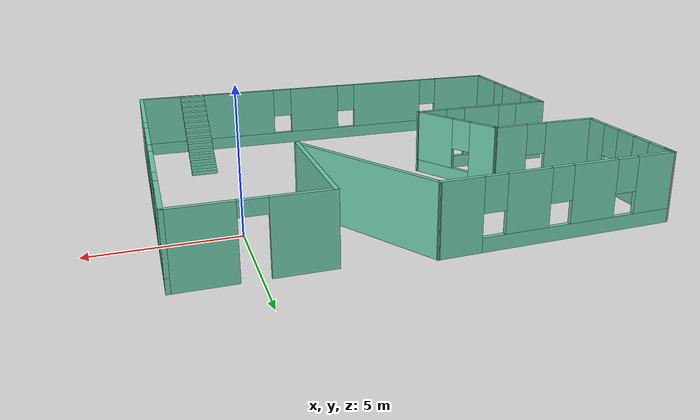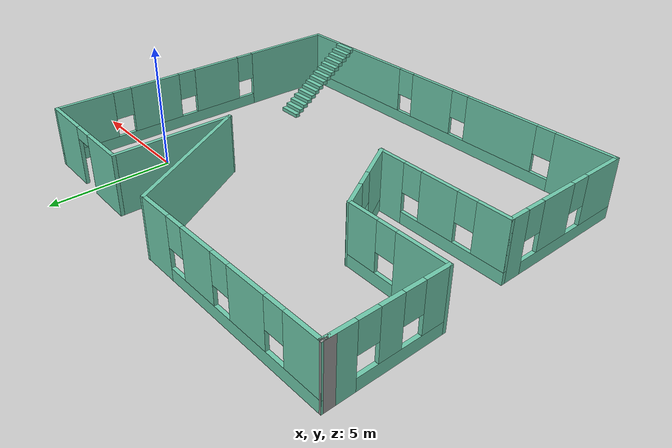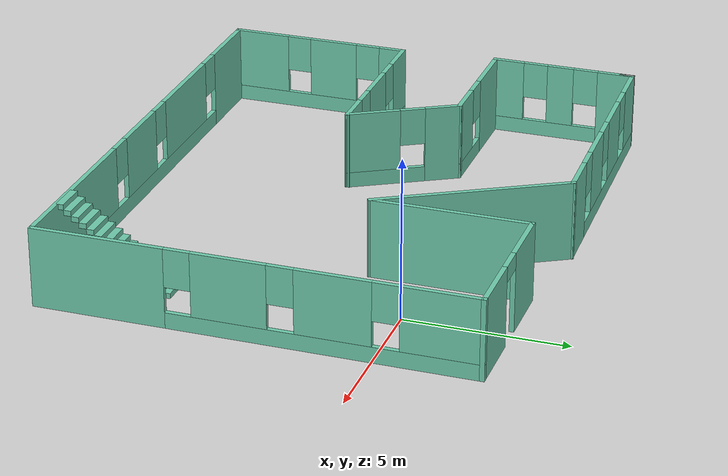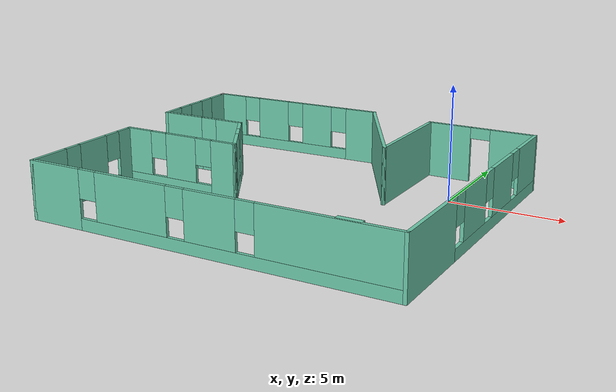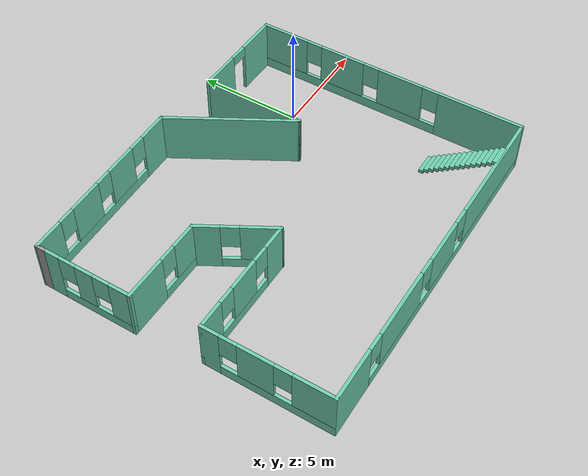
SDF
<?xml version='1.0'?>
<sdf version='1.7'>
  <model name='building'>
    <pose>-5.59578 -3.2778 0 0 -0 0</pose>
    <link name='Stairs_0'>
      <visual name='Stairs_0_Visual_0'>
        <pose>6.08378 -3.52115 0.083333 0 -0 0</pose>
        <geometry>
          <box>
            <size>1 0.233333 0.166667</size>
          </box>
        </geometry>
        <material>
          <script>
            <uri>file://media/materials/scripts/gazebo.material</uri>
            <name>Gazebo/Grey</name>
          </script>
          <ambient>0.435294 0.796078 0.67451 1</ambient>
        </material>
        <meta>
          <layer>0</layer>
        </meta>
      </visual>
      <collision name='Stairs_0_Collision_0'>
        <geometry>
          <box>
            <size>1 0.233333 0.166667</size>
          </box>
        </geometry>
        <pose>6.08378 -3.52115 0.083333 0 -0 0</pose>
      </collision>
      <visual name='Stairs_0_Visual_1'>
        <pose>6.08378 -3.75449 0.25 0 -0 0</pose>
        <geometry>
          <box>
            <size>1 0.233333 0.166667</size>
          </box>
        </geometry>
        <material>
          <script>
            <uri>file://media/materials/scripts/gazebo.material</uri>
            <name>Gazebo/Grey</name>
          </script>
          <ambient>0.435294 0.796078 0.67451 1</ambient>
        </material>
        <meta>
          <layer>0</layer>
        </meta>
      </visual>
      <collision name='Stairs_0_Collision_1'>
        <geometry>
          <box>
            <size>1 0.233333 0.166667</size>
          </box>
        </geometry>
        <pose>6.08378 -3.75449 0.25 0 -0 0</pose>
      </collision>
      <visual name='Stairs_0_Visual_2'>
        <pose>6.08378 -3.98782 0.416667 0 -0 0</pose>
        <geometry>
          <box>
            <size>1 0.233333 0.166667</size>
          </box>
        </geometry>
        <material>
          <script>
            <uri>file://media/materials/scripts/gazebo.material</uri>
            <name>Gazebo/Grey</name>
          </script>
          <ambient>0.435294 0.796078 0.67451 1</ambient>
        </material>
        <meta>
          <layer>0</layer>
        </meta>
      </visual>
      <collision name='Stairs_0_Collision_2'>
        <geometry>
          <box>
            <size>1 0.233333 0.166667</size>
          </box>
        </geometry>
        <pose>6.08378 -3.98782 0.416667 0 -0 0</pose>
      </collision>
      <visual name='Stairs_0_Visual_3'>
        <pose>6.08378 -4.22115 0.583333 0 -0 0</pose>
        <geometry>
          <box>
            <size>1 0.233333 0.166667</size>
          </box>
        </geometry>
        <material>
          <script>
            <uri>file://media/materials/scripts/gazebo.material</uri>
            <name>Gazebo/Grey</name>
          </script>
          <ambient>0.435294 0.796078 0.67451 1</ambient>
        </material>
        <meta>
          <layer>0</layer>
        </meta>
      </visual>
      <collision name='Stairs_0_Collision_3'>
        <geometry>
          <box>
            <size>1 0.233333 0.166667</size>
          </box>
        </geometry>
        <pose>6.08378 -4.22115 0.583333 0 -0 0</pose>
      </collision>
      <visual name='Stairs_0_Visual_4'>
        <pose>6.08378 -4.45449 0.75 0 -0 0</pose>
        <geometry>
          <box>
            <size>1 0.233333 0.166667</size>
          </box>
        </geometry>
        <material>
          <script>
            <uri>file://media/materials/scripts/gazebo.material</uri>
            <name>Gazebo/Grey</name>
          </script>
          <ambient>0.435294 0.796078 0.67451 1</ambient>
        </material>
        <meta>
          <layer>0</layer>
        </meta>
      </visual>
      <collision name='Stairs_0_Collision_4'>
        <geometry>
          <box>
            <size>1 0.233333 0.166667</size>
          </box>
        </geometry>
        <pose>6.08378 -4.45449 0.75 0 -0 0</pose>
      </collision>
      <visual name='Stairs_0_Visual_5'>
        <pose>6.08378 -4.68782 0.916667 0 -0 0</pose>
        <geometry>
          <box>
            <size>1 0.233333 0.166667</size>
          </box>
        </geometry>
        <material>
          <script>
            <uri>file://media/materials/scripts/gazebo.material</uri>
            <name>Gazebo/Grey</name>
          </script>
          <ambient>0.435294 0.796078 0.67451 1</ambient>
        </material>
        <meta>
          <layer>0</layer>
        </meta>
      </visual>
      <collision name='Stairs_0_Collision_5'>
        <geometry>
          <box>
            <size>1 0.233333 0.166667</size>
          </box>
        </geometry>
        <pose>6.08378 -4.68782 0.916667 0 -0 0</pose>
      </collision>
      <visual name='Stairs_0_Visual_6'>
        <pose>6.08378 -4.92115 1.08333 0 -0 0</pose>
        <geometry>
          <box>
            <size>1 0.233333 0.166667</size>
          </box>
        </geometry>
        <material>
          <script>
            <uri>file://media/materials/scripts/gazebo.material</uri>
            <name>Gazebo/Grey</name>
          </script>
          <ambient>0.435294 0.796078 0.67451 1</ambient>
        </material>
        <meta>
          <layer>0</layer>
        </meta>
      </visual>
      <collision name='Stairs_0_Collision_6'>
        <geometry>
          <box>
            <size>1 0.233333 0.166667</size>
          </box>
        </geometry>
        <pose>6.08378 -4.92115 1.08333 0 -0 0</pose>
      </collision>
      <visual name='Stairs_0_Visual_7'>
        <pose>6.08378 -5.15449 1.25 0 -0 0</pose>
        <geometry>
          <box>
            <size>1 0.233333 0.166667</size>
          </box>
        </geometry>
        <material>
          <script>
            <uri>file://media/materials/scripts/gazebo.material</uri>
            <name>Gazebo/Grey</name>
          </script>
          <ambient>0.435294 0.796078 0.67451 1</ambient>
        </material>
        <meta>
          <layer>0</layer>
        </meta>
      </visual>
      <collision name='Stairs_0_Collision_7'>
        <geometry>
          <box>
            <size>1 0.233333 0.166667</size>
          </box>
        </geometry>
        <pose>6.08378 -5.15449 1.25 0 -0 0</pose>
      </collision>
      <visual name='Stairs_0_Visual_8'>
        <pose>6.08378 -5.38782 1.41667 0 -0 0</pose>
        <geometry>
          <box>
            <size>1 0.233333 0.166667</size>
          </box>
        </geometry>
        <material>
          <script>
            <uri>file://media/materials/scripts/gazebo.material</uri>
            <name>Gazebo/Grey</name>
          </script>
          <ambient>0.435294 0.796078 0.67451 1</ambient>
        </material>
        <meta>
          <layer>0</layer>
        </meta>
      </visual>
      <collision name='Stairs_0_Collision_8'>
        <geometry>
          <box>
            <size>1 0.233333 0.166667</size>
          </box>
        </geometry>
        <pose>6.08378 -5.38782 1.41667 0 -0 0</pose>
      </collision>
      <visual name='Stairs_0_Visual_9'>
        <pose>6.08378 -5.62115 1.58333 0 -0 0</pose>
        <geometry>
          <box>
            <size>1 0.233333 0.166667</size>
          </box>
        </geometry>
        <material>
          <script>
            <uri>file://media/materials/scripts/gazebo.material</uri>
            <name>Gazebo/Grey</name>
          </script>
          <ambient>0.435294 0.796078 0.67451 1</ambient>
        </material>
        <meta>
          <layer>0</layer>
        </meta>
      </visual>
      <collision name='Stairs_0_Collision_9'>
        <geometry>
          <box>
            <size>1 0.233333 0.166667</size>
          </box>
        </geometry>
        <pose>6.08378 -5.62115 1.58333 0 -0 0</pose>
      </collision>
      <visual name='Stairs_0_Visual_10'>
        <pose>6.08378 -5.85449 1.75 0 -0 0</pose>
        <geometry>
          <box>
            <size>1 0.233333 0.166667</size>
          </box>
        </geometry>
        <material>
          <script>
            <uri>file://media/materials/scripts/gazebo.material</uri>
            <name>Gazebo/Grey</name>
          </script>
          <ambient>0.435294 0.796078 0.67451 1</ambient>
        </material>
        <meta>
          <layer>0</layer>
        </meta>
      </visual>
      <collision name='Stairs_0_Collision_10'>
        <geometry>
          <box>
            <size>1 0.233333 0.166667</size>
          </box>
        </geometry>
        <pose>6.08378 -5.85449 1.75 0 -0 0</pose>
      </collision>
      <visual name='Stairs_0_Visual_11'>
        <pose>6.08378 -6.08782 1.91667 0 -0 0</pose>
        <geometry>
          <box>
            <size>1 0.233333 0.166667</size>
          </box>
        </geometry>
        <material>
          <script>
            <uri>file://media/materials/scripts/gazebo.material</uri>
            <name>Gazebo/Grey</name>
          </script>
          <ambient>0.435294 0.796078 0.67451 1</ambient>
        </material>
        <meta>
          <layer>0</layer>
        </meta>
      </visual>
      <collision name='Stairs_0_Collision_11'>
        <geometry>
          <box>
            <size>1 0.233333 0.166667</size>
          </box>
        </geometry>
        <pose>6.08378 -6.08782 1.91667 0 -0 0</pose>
      </collision>
      <visual name='Stairs_0_Visual_12'>
        <pose>6.08378 -6.32115 2.08333 0 -0 0</pose>
        <geometry>
          <box>
            <size>1 0.233333 0.166667</size>
          </box>
        </geometry>
        <material>
          <script>
            <uri>file://media/materials/scripts/gazebo.material</uri>
            <name>Gazebo/Grey</name>
          </script>
          <ambient>0.435294 0.796078 0.67451 1</ambient>
        </material>
        <meta>
          <layer>0</layer>
        </meta>
      </visual>
      <collision name='Stairs_0_Collision_12'>
        <geometry>
          <box>
            <size>1 0.233333 0.166667</size>
          </box>
        </geometry>
        <pose>6.08378 -6.32115 2.08333 0 -0 0</pose>
      </collision>
      <visual name='Stairs_0_Visual_13'>
        <pose>6.08378 -6.55449 2.25 0 -0 0</pose>
        <geometry>
          <box>
            <size>1 0.233333 0.166667</size>
          </box>
        </geometry>
        <material>
          <script>
            <uri>file://media/materials/scripts/gazebo.material</uri>
            <name>Gazebo/Grey</name>
          </script>
          <ambient>0.435294 0.796078 0.67451 1</ambient>
        </material>
        <meta>
          <layer>0</layer>
        </meta>
      </visual>
      <collision name='Stairs_0_Collision_13'>
        <geometry>
          <box>
            <size>1 0.233333 0.166667</size>
          </box>
        </geometry>
        <pose>6.08378 -6.55449 2.25 0 -0 0</pose>
      </collision>
      <visual name='Stairs_0_Visual_14'>
        <pose>6.08378 -6.78782 2.41667 0 -0 0</pose>
        <geometry>
          <box>
            <size>1 0.233333 0.166667</size>
          </box>
        </geometry>
        <material>
          <script>
            <uri>file://media/materials/scripts/gazebo.material</uri>
            <name>Gazebo/Grey</name>
          </script>
          <ambient>0.435294 0.796078 0.67451 1</ambient>
        </material>
        <meta>
          <layer>0</layer>
        </meta>
      </visual>
      <collision name='Stairs_0_Collision_14'>
        <geometry>
          <box>
            <size>1 0.233333 0.166667</size>
          </box>
        </geometry>
        <pose>6.08378 -6.78782 2.41667 0 -0 0</pose>
      </collision>
    </link>
    <link name='Wall_21'>
      <pose>-8.19906 4.36259 0 0 -0 -1.5708</pose>
      <visual name='Wall_21_Visual_0'>
        <pose>-1.76985 0 1.25 0 -0 0</pose>
        <geometry>
          <box>
            <size>1.21029 0.15 2.5</size>
          </box>
        </geometry>
        <material>
          <script>
            <uri>file://media/materials/scripts/gazebo.material</uri>
            <name>Gazebo/Grey</name>
          </script>
          <ambient>0.435294 0.796078 0.67451 1</ambient>
        </material>
        <meta>
          <layer>0</layer>
        </meta>
      </visual>
      <collision name='Wall_21_Collision_0'>
        <geometry>
          <box>
            <size>1.21029 0.15 2.5</size>
          </box>
        </geometry>
        <pose>-1.76985 0 1.25 0 -0 0</pose>
      </collision>
      <visual name='Wall_21_Visual_1'>
        <pose>0.605145 0 0.25 0 -0 0</pose>
        <geometry>
          <box>
            <size>3.53971 0.15 0.5</size>
          </box>
        </geometry>
        <material>
          <script>
            <uri>file://media/materials/scripts/gazebo.material</uri>
            <name>Gazebo/Grey</name>
          </script>
          <ambient>0.435294 0.796078 0.67451 1</ambient>
        </material>
        <meta>
          <layer>0</layer>
        </meta>
      </visual>
      <collision name='Wall_21_Collision_1'>
        <geometry>
          <box>
            <size>3.53971 0.15 0.5</size>
          </box>
        </geometry>
        <pose>0.605145 0 0.25 0 -0 0</pose>
      </collision>
      <visual name='Wall_21_Visual_2'>
        <pose>0.07272 0 1.5 0 -0 0</pose>
        <geometry>
          <box>
            <size>0.874861 0.15 2</size>
          </box>
        </geometry>
        <material>
          <script>
            <uri>file://media/materials/scripts/gazebo.material</uri>
            <name>Gazebo/Grey</name>
          </script>
          <ambient>0.435294 0.796078 0.67451 1</ambient>
        </material>
        <meta>
          <layer>0</layer>
        </meta>
      </visual>
      <collision name='Wall_21_Collision_2'>
        <geometry>
          <box>
            <size>0.874861 0.15 2</size>
          </box>
        </geometry>
        <pose>0.07272 0 1.5 0 -0 0</pose>
      </collision>
      <visual name='Wall_21_Visual_3'>
        <pose>1.84258 0 1.5 0 -0 0</pose>
        <geometry>
          <box>
            <size>1.06485 0.15 2</size>
          </box>
        </geometry>
        <material>
          <script>
            <uri>file://media/materials/scripts/gazebo.material</uri>
            <name>Gazebo/Grey</name>
          </script>
          <ambient>0.435294 0.796078 0.67451 1</ambient>
        </material>
        <meta>
          <layer>0</layer>
        </meta>
      </visual>
      <collision name='Wall_21_Collision_3'>
        <geometry>
          <box>
            <size>1.06485 0.15 2</size>
          </box>
        </geometry>
        <pose>1.84258 0 1.5 0 -0 0</pose>
      </collision>
      <visual name='Wall_21_Visual_4'>
        <pose>-0.764711 0 1.9 0 -0 0</pose>
        <geometry>
          <box>
            <size>0.8 0.15 1.2</size>
          </box>
        </geometry>
        <material>
          <script>
            <uri>file://media/materials/scripts/gazebo.material</uri>
            <name>Gazebo/Grey</name>
          </script>
          <ambient>0.435294 0.796078 0.67451 1</ambient>
        </material>
        <meta>
          <layer>0</layer>
        </meta>
      </visual>
      <collision name='Wall_21_Collision_4'>
        <geometry>
          <box>
            <size>0.8 0.15 1.2</size>
          </box>
        </geometry>
        <pose>-0.764711 0 1.9 0 -0 0</pose>
      </collision>
      <visual name='Wall_21_Visual_5'>
        <pose>0.91015 0 1.9 0 -0 0</pose>
        <geometry>
          <box>
            <size>0.8 0.15 1.2</size>
          </box>
        </geometry>
        <material>
          <script>
            <uri>file://media/materials/scripts/gazebo.material</uri>
            <name>Gazebo/Grey</name>
          </script>
          <ambient>0.435294 0.796078 0.67451 1</ambient>
        </material>
        <meta>
          <layer>0</layer>
        </meta>
      </visual>
      <collision name='Wall_21_Collision_5'>
        <geometry>
          <box>
            <size>0.8 0.15 1.2</size>
          </box>
        </geometry>
        <pose>0.91015 0 1.9 0 -0 0</pose>
      </collision>
    </link>
    <link name='Wall_22'>
      <pose>-6.14907 2.06259 0 0 -0 0</pose>
      <visual name='Wall_22_Visual_0'>
        <pose>-1.07788 0 1.25 0 -0 0</pose>
        <geometry>
          <box>
            <size>2.09424 0.15 2.5</size>
          </box>
        </geometry>
        <material>
          <script>
            <uri>file://media/materials/scripts/gazebo.material</uri>
            <name>Gazebo/Grey</name>
          </script>
          <ambient>0.435294 0.796078 0.67451 1</ambient>
        </material>
        <meta>
          <layer>0</layer>
        </meta>
      </visual>
      <collision name='Wall_22_Collision_0'>
        <geometry>
          <box>
            <size>2.09424 0.15 2.5</size>
          </box>
        </geometry>
        <pose>-1.07788 0 1.25 0 -0 0</pose>
      </collision>
      <visual name='Wall_22_Visual_1'>
        <pose>1.04712 0 0.25 0 -0 0</pose>
        <geometry>
          <box>
            <size>2.15576 0.15 0.5</size>
          </box>
        </geometry>
        <material>
          <script>
            <uri>file://media/materials/scripts/gazebo.material</uri>
            <name>Gazebo/Grey</name>
          </script>
          <ambient>0.435294 0.796078 0.67451 1</ambient>
        </material>
        <meta>
          <layer>0</layer>
        </meta>
      </visual>
      <collision name='Wall_22_Collision_1'>
        <geometry>
          <box>
            <size>2.15576 0.15 0.5</size>
          </box>
        </geometry>
        <pose>1.04712 0 0.25 0 -0 0</pose>
      </collision>
      <visual name='Wall_22_Visual_2'>
        <pose>1.44712 0 1.5 0 -0 0</pose>
        <geometry>
          <box>
            <size>1.35576 0.15 2</size>
          </box>
        </geometry>
        <material>
          <script>
            <uri>file://media/materials/scripts/gazebo.material</uri>
            <name>Gazebo/Grey</name>
          </script>
          <ambient>0.435294 0.796078 0.67451 1</ambient>
        </material>
        <meta>
          <layer>0</layer>
        </meta>
      </visual>
      <collision name='Wall_22_Collision_2'>
        <geometry>
          <box>
            <size>1.35576 0.15 2</size>
          </box>
        </geometry>
        <pose>1.44712 0 1.5 0 -0 0</pose>
      </collision>
      <visual name='Wall_22_Visual_3'>
        <pose>0.369244 0 1.9 0 -0 0</pose>
        <geometry>
          <box>
            <size>0.8 0.15 1.2</size>
          </box>
        </geometry>
        <material>
          <script>
            <uri>file://media/materials/scripts/gazebo.material</uri>
            <name>Gazebo/Grey</name>
          </script>
          <ambient>0.435294 0.796078 0.67451 1</ambient>
        </material>
        <meta>
          <layer>0</layer>
        </meta>
      </visual>
      <collision name='Wall_22_Collision_3'>
        <geometry>
          <box>
            <size>0.8 0.15 1.2</size>
          </box>
        </geometry>
        <pose>0.369244 0 1.9 0 -0 0</pose>
      </collision>
    </link>
    <link name='Wall_23'>
      <pose>-3.19906 0.503743 0 0 -0 -1.0472</pose>
      <visual name='Wall_23_Visual_0'>
        <pose>-1.27463 0 1.25 0 -0 0</pose>
        <geometry>
          <box>
            <size>1.20073 0.15 2.5</size>
          </box>
        </geometry>
        <material>
          <script>
            <uri>file://media/materials/scripts/gazebo.material</uri>
            <name>Gazebo/Grey</name>
          </script>
          <ambient>0.435294 0.796078 0.67451 1</ambient>
        </material>
        <meta>
          <layer>0</layer>
        </meta>
      </visual>
      <collision name='Wall_23_Collision_0'>
        <geometry>
          <box>
            <size>1.20073 0.15 2.5</size>
          </box>
        </geometry>
        <pose>-1.27463 0 1.25 0 -0 0</pose>
      </collision>
      <visual name='Wall_23_Visual_1'>
        <pose>0.600366 0 0.25 0 -0 0</pose>
        <geometry>
          <box>
            <size>2.54927 0.15 0.5</size>
          </box>
        </geometry>
        <material>
          <script>
            <uri>file://media/materials/scripts/gazebo.material</uri>
            <name>Gazebo/Grey</name>
          </script>
          <ambient>0.435294 0.796078 0.67451 1</ambient>
        </material>
        <meta>
          <layer>0</layer>
        </meta>
      </visual>
      <collision name='Wall_23_Collision_1'>
        <geometry>
          <box>
            <size>2.54927 0.15 0.5</size>
          </box>
        </geometry>
        <pose>0.600366 0 0.25 0 -0 0</pose>
      </collision>
      <visual name='Wall_23_Visual_2'>
        <pose>1.00037 0 1.5 0 -0 0</pose>
        <geometry>
          <box>
            <size>1.74927 0.15 2</size>
          </box>
        </geometry>
        <material>
          <script>
            <uri>file://media/materials/scripts/gazebo.material</uri>
            <name>Gazebo/Grey</name>
          </script>
          <ambient>0.435294 0.796078 0.67451 1</ambient>
        </material>
        <meta>
          <layer>0</layer>
        </meta>
      </visual>
      <collision name='Wall_23_Collision_2'>
        <geometry>
          <box>
            <size>1.74927 0.15 2</size>
          </box>
        </geometry>
        <pose>1.00037 0 1.5 0 -0 0</pose>
      </collision>
      <visual name='Wall_23_Visual_3'>
        <pose>-0.274268 0 1.9 0 -0 0</pose>
        <geometry>
          <box>
            <size>0.8 0.15 1.2</size>
          </box>
        </geometry>
        <material>
          <script>
            <uri>file://media/materials/scripts/gazebo.material</uri>
            <name>Gazebo/Grey</name>
          </script>
          <ambient>0.435294 0.796078 0.67451 1</ambient>
        </material>
        <meta>
          <layer>0</layer>
        </meta>
      </visual>
      <collision name='Wall_23_Collision_3'>
        <geometry>
          <box>
            <size>0.8 0.15 1.2</size>
          </box>
        </geometry>
        <pose>-0.274268 0 1.9 0 -0 0</pose>
      </collision>
    </link>
    <link name='Wall_24'>
      <pose>-5.09906 -1.0551 0 0 -0 3.14159</pose>
      <visual name='Wall_24_Visual_0'>
        <pose>-2.25086 0 1.25 0 -0 0</pose>
        <geometry>
          <box>
            <size>1.24828 0.15 2.5</size>
          </box>
        </geometry>
        <material>
          <script>
            <uri>file://media/materials/scripts/gazebo.material</uri>
            <name>Gazebo/Grey</name>
          </script>
          <ambient>0.435294 0.796078 0.67451 1</ambient>
        </material>
        <meta>
          <layer>0</layer>
        </meta>
      </visual>
      <collision name='Wall_24_Collision_0'>
        <geometry>
          <box>
            <size>1.24828 0.15 2.5</size>
          </box>
        </geometry>
        <pose>-2.25086 0 1.25 0 -0 0</pose>
      </collision>
      <visual name='Wall_24_Visual_1'>
        <pose>0.624138 0 0.25 0 -0 0</pose>
        <geometry>
          <box>
            <size>4.50173 0.15 0.5</size>
          </box>
        </geometry>
        <material>
          <script>
            <uri>file://media/materials/scripts/gazebo.material</uri>
            <name>Gazebo/Grey</name>
          </script>
          <ambient>0.435294 0.796078 0.67451 1</ambient>
        </material>
        <meta>
          <layer>0</layer>
        </meta>
      </visual>
      <collision name='Wall_24_Collision_1'>
        <geometry>
          <box>
            <size>4.50173 0.15 0.5</size>
          </box>
        </geometry>
        <pose>0.624138 0 0.25 0 -0 0</pose>
      </collision>
      <visual name='Wall_24_Visual_2'>
        <pose>-0.040365 0 1.5 0 -0 0</pose>
        <geometry>
          <box>
            <size>1.57272 0.15 2</size>
          </box>
        </geometry>
        <material>
          <script>
            <uri>file://media/materials/scripts/gazebo.material</uri>
            <name>Gazebo/Grey</name>
          </script>
          <ambient>0.435294 0.796078 0.67451 1</ambient>
        </material>
        <meta>
          <layer>0</layer>
        </meta>
      </visual>
      <collision name='Wall_24_Collision_2'>
        <geometry>
          <box>
            <size>1.57272 0.15 2</size>
          </box>
        </geometry>
        <pose>-0.040365 0 1.5 0 -0 0</pose>
      </collision>
      <visual name='Wall_24_Visual_3'>
        <pose>2.2105 0 1.5 0 -0 0</pose>
        <geometry>
          <box>
            <size>1.329 0.15 2</size>
          </box>
        </geometry>
        <material>
          <script>
            <uri>file://media/materials/scripts/gazebo.material</uri>
            <name>Gazebo/Grey</name>
          </script>
          <ambient>0.435294 0.796078 0.67451 1</ambient>
        </material>
        <meta>
          <layer>0</layer>
        </meta>
      </visual>
      <collision name='Wall_24_Collision_3'>
        <geometry>
          <box>
            <size>1.329 0.15 2</size>
          </box>
        </geometry>
        <pose>2.2105 0 1.5 0 -0 0</pose>
      </collision>
      <visual name='Wall_24_Visual_4'>
        <pose>-1.22673 0 1.9 0 -0 0</pose>
        <geometry>
          <box>
            <size>0.8 0.15 1.2</size>
          </box>
        </geometry>
        <material>
          <script>
            <uri>file://media/materials/scripts/gazebo.material</uri>
            <name>Gazebo/Grey</name>
          </script>
          <ambient>0.435294 0.796078 0.67451 1</ambient>
        </material>
        <meta>
          <layer>0</layer>
        </meta>
      </visual>
      <collision name='Wall_24_Collision_4'>
        <geometry>
          <box>
            <size>0.8 0.15 1.2</size>
          </box>
        </geometry>
        <pose>-1.22673 0 1.9 0 -0 0</pose>
      </collision>
      <visual name='Wall_24_Visual_5'>
        <pose>1.146 0 1.9 0 -0 0</pose>
        <geometry>
          <box>
            <size>0.8 0.15 1.2</size>
          </box>
        </geometry>
        <material>
          <script>
            <uri>file://media/materials/scripts/gazebo.material</uri>
            <name>Gazebo/Grey</name>
          </script>
          <ambient>0.435294 0.796078 0.67451 1</ambient>
        </material>
        <meta>
          <layer>0</layer>
        </meta>
      </visual>
      <collision name='Wall_24_Collision_5'>
        <geometry>
          <box>
            <size>0.8 0.15 1.2</size>
          </box>
        </geometry>
        <pose>1.146 0 1.9 0 -0 0</pose>
      </collision>
    </link>
    <link name='Wall_25'>
      <pose>-7.89907 -3.9801 0 0 -0 -1.5708</pose>
      <visual name='Wall_25_Visual_0'>
        <pose>-2.55505 0 1.25 0 -0 0</pose>
        <geometry>
          <box>
            <size>0.8899 0.15 2.5</size>
          </box>
        </geometry>
        <material>
          <script>
            <uri>file://media/materials/scripts/gazebo.material</uri>
            <name>Gazebo/Grey</name>
          </script>
          <ambient>0.435294 0.796078 0.67451 1</ambient>
        </material>
        <meta>
          <layer>0</layer>
        </meta>
      </visual>
      <collision name='Wall_25_Collision_0'>
        <geometry>
          <box>
            <size>0.8899 0.15 2.5</size>
          </box>
        </geometry>
        <pose>-2.55505 0 1.25 0 -0 0</pose>
      </collision>
      <visual name='Wall_25_Visual_1'>
        <pose>0.44495 0 0.25 0 -0 0</pose>
        <geometry>
          <box>
            <size>5.1101 0.15 0.5</size>
          </box>
        </geometry>
        <material>
          <script>
            <uri>file://media/materials/scripts/gazebo.material</uri>
            <name>Gazebo/Grey</name>
          </script>
          <ambient>0.435294 0.796078 0.67451 1</ambient>
        </material>
        <meta>
          <layer>0</layer>
        </meta>
      </visual>
      <collision name='Wall_25_Collision_1'>
        <geometry>
          <box>
            <size>5.1101 0.15 0.5</size>
          </box>
        </geometry>
        <pose>0.44495 0 0.25 0 -0 0</pose>
      </collision>
      <visual name='Wall_25_Visual_2'>
        <pose>-0.500479 0 1.5 0 -0 0</pose>
        <geometry>
          <box>
            <size>1.61924 0.15 2</size>
          </box>
        </geometry>
        <material>
          <script>
            <uri>file://media/materials/scripts/gazebo.material</uri>
            <name>Gazebo/Grey</name>
          </script>
          <ambient>0.435294 0.796078 0.67451 1</ambient>
        </material>
        <meta>
          <layer>0</layer>
        </meta>
      </visual>
      <collision name='Wall_25_Collision_2'>
        <geometry>
          <box>
            <size>1.61924 0.15 2</size>
          </box>
        </geometry>
        <pose>-0.500479 0 1.5 0 -0 0</pose>
      </collision>
      <visual name='Wall_25_Visual_3'>
        <pose>2.05457 0 1.5 0 -0 0</pose>
        <geometry>
          <box>
            <size>1.89086 0.15 2</size>
          </box>
        </geometry>
        <material>
          <script>
            <uri>file://media/materials/scripts/gazebo.material</uri>
            <name>Gazebo/Grey</name>
          </script>
          <ambient>0.435294 0.796078 0.67451 1</ambient>
        </material>
        <meta>
          <layer>0</layer>
        </meta>
      </visual>
      <collision name='Wall_25_Collision_3'>
        <geometry>
          <box>
            <size>1.89086 0.15 2</size>
          </box>
        </geometry>
        <pose>2.05457 0 1.5 0 -0 0</pose>
      </collision>
      <visual name='Wall_25_Visual_4'>
        <pose>-1.7101 0 1.9 0 -0 0</pose>
        <geometry>
          <box>
            <size>0.8 0.15 1.2</size>
          </box>
        </geometry>
        <material>
          <script>
            <uri>file://media/materials/scripts/gazebo.material</uri>
            <name>Gazebo/Grey</name>
          </script>
          <ambient>0.435294 0.796078 0.67451 1</ambient>
        </material>
        <meta>
          <layer>0</layer>
        </meta>
      </visual>
      <collision name='Wall_25_Collision_4'>
        <geometry>
          <box>
            <size>0.8 0.15 1.2</size>
          </box>
        </geometry>
        <pose>-1.7101 0 1.9 0 -0 0</pose>
      </collision>
      <visual name='Wall_25_Visual_5'>
        <pose>0.709143 0 1.9 0 -0 0</pose>
        <geometry>
          <box>
            <size>0.8 0.15 1.2</size>
          </box>
        </geometry>
        <material>
          <script>
            <uri>file://media/materials/scripts/gazebo.material</uri>
            <name>Gazebo/Grey</name>
          </script>
          <ambient>0.435294 0.796078 0.67451 1</ambient>
        </material>
        <meta>
          <layer>0</layer>
        </meta>
      </visual>
      <collision name='Wall_25_Collision_5'>
        <geometry>
          <box>
            <size>0.8 0.15 1.2</size>
          </box>
        </geometry>
        <pose>0.709143 0 1.9 0 -0 0</pose>
      </collision>
    </link>
    <link name='Wall_26'>
      <pose>0.150936 -6.9051 0 0 -0 0</pose>
      <visual name='Wall_26_Visual_0'>
        <pose>-6.87895 0 1.25 0 -0 0</pose>
        <geometry>
          <box>
            <size>2.4921 0.15 2.5</size>
          </box>
        </geometry>
        <material>
          <script>
            <uri>file://media/materials/scripts/gazebo.material</uri>
            <name>Gazebo/Grey</name>
          </script>
          <ambient>0.435294 0.796078 0.67451 1</ambient>
        </material>
        <meta>
          <layer>0</layer>
        </meta>
      </visual>
      <collision name='Wall_26_Collision_0'>
        <geometry>
          <box>
            <size>2.4921 0.15 2.5</size>
          </box>
        </geometry>
        <pose>-6.87895 0 1.25 0 -0 0</pose>
      </collision>
      <visual name='Wall_26_Visual_1'>
        <pose>1.24605 0 0.25 0 -0 0</pose>
        <geometry>
          <box>
            <size>13.7579 0.15 0.5</size>
          </box>
        </geometry>
        <material>
          <script>
            <uri>file://media/materials/scripts/gazebo.material</uri>
            <name>Gazebo/Grey</name>
          </script>
          <ambient>0.435294 0.796078 0.67451 1</ambient>
        </material>
        <meta>
          <layer>0</layer>
        </meta>
      </visual>
      <collision name='Wall_26_Collision_1'>
        <geometry>
          <box>
            <size>13.7579 0.15 0.5</size>
          </box>
        </geometry>
        <pose>1.24605 0 0.25 0 -0 0</pose>
      </collision>
      <visual name='Wall_26_Visual_2'>
        <pose>-3.16258 0 1.5 0 -0 0</pose>
        <geometry>
          <box>
            <size>3.34063 0.15 2</size>
          </box>
        </geometry>
        <material>
          <script>
            <uri>file://media/materials/scripts/gazebo.material</uri>
            <name>Gazebo/Grey</name>
          </script>
          <ambient>0.435294 0.796078 0.67451 1</ambient>
        </material>
        <meta>
          <layer>0</layer>
        </meta>
      </visual>
      <collision name='Wall_26_Collision_2'>
        <geometry>
          <box>
            <size>3.34063 0.15 2</size>
          </box>
        </geometry>
        <pose>-3.16258 0 1.5 0 -0 0</pose>
      </collision>
      <visual name='Wall_26_Visual_3'>
        <pose>0.419758 0 1.5 0 -0 0</pose>
        <geometry>
          <box>
            <size>2.22405 0.15 2</size>
          </box>
        </geometry>
        <material>
          <script>
            <uri>file://media/materials/scripts/gazebo.material</uri>
            <name>Gazebo/Grey</name>
          </script>
          <ambient>0.435294 0.796078 0.67451 1</ambient>
        </material>
        <meta>
          <layer>0</layer>
        </meta>
      </visual>
      <collision name='Wall_26_Collision_3'>
        <geometry>
          <box>
            <size>2.22405 0.15 2</size>
          </box>
        </geometry>
        <pose>0.419758 0 1.5 0 -0 0</pose>
      </collision>
      <visual name='Wall_26_Visual_4'>
        <pose>5.22839 0 1.5 0 -0 0</pose>
        <geometry>
          <box>
            <size>5.79322 0.15 2</size>
          </box>
        </geometry>
        <material>
          <script>
            <uri>file://media/materials/scripts/gazebo.material</uri>
            <name>Gazebo/Grey</name>
          </script>
          <ambient>0.435294 0.796078 0.67451 1</ambient>
        </material>
        <meta>
          <layer>0</layer>
        </meta>
      </visual>
      <collision name='Wall_26_Collision_4'>
        <geometry>
          <box>
            <size>5.79322 0.15 2</size>
          </box>
        </geometry>
        <pose>5.22839 0 1.5 0 -0 0</pose>
      </collision>
      <visual name='Wall_26_Visual_5'>
        <pose>-5.2329 0 1.9 0 -0 0</pose>
        <geometry>
          <box>
            <size>0.8 0.15 1.2</size>
          </box>
        </geometry>
        <material>
          <script>
            <uri>file://media/materials/scripts/gazebo.material</uri>
            <name>Gazebo/Grey</name>
          </script>
          <ambient>0.435294 0.796078 0.67451 1</ambient>
        </material>
        <meta>
          <layer>0</layer>
        </meta>
      </visual>
      <collision name='Wall_26_Collision_5'>
        <geometry>
          <box>
            <size>0.8 0.15 1.2</size>
          </box>
        </geometry>
        <pose>-5.2329 0 1.9 0 -0 0</pose>
      </collision>
      <visual name='Wall_26_Visual_6'>
        <pose>-1.09227 0 1.9 0 -0 0</pose>
        <geometry>
          <box>
            <size>0.8 0.15 1.2</size>
          </box>
        </geometry>
        <material>
          <script>
            <uri>file://media/materials/scripts/gazebo.material</uri>
            <name>Gazebo/Grey</name>
          </script>
          <ambient>0.435294 0.796078 0.67451 1</ambient>
        </material>
        <meta>
          <layer>0</layer>
        </meta>
      </visual>
      <collision name='Wall_26_Collision_6'>
        <geometry>
          <box>
            <size>0.8 0.15 1.2</size>
          </box>
        </geometry>
        <pose>-1.09227 0 1.9 0 -0 0</pose>
      </collision>
      <visual name='Wall_26_Visual_7'>
        <pose>1.93179 0 1.9 0 -0 0</pose>
        <geometry>
          <box>
            <size>0.8 0.15 1.2</size>
          </box>
        </geometry>
        <material>
          <script>
            <uri>file://media/materials/scripts/gazebo.material</uri>
            <name>Gazebo/Grey</name>
          </script>
          <ambient>0.435294 0.796078 0.67451 1</ambient>
        </material>
        <meta>
          <layer>0</layer>
        </meta>
      </visual>
      <collision name='Wall_26_Collision_7'>
        <geometry>
          <box>
            <size>0.8 0.15 1.2</size>
          </box>
        </geometry>
        <pose>1.93179 0 1.9 0 -0 0</pose>
      </collision>
    </link>
    <link name='Wall_27'>
      <pose>8.20094 -0.230103 0 0 -0 1.5708</pose>
      <visual name='Wall_27_Visual_0'>
        <pose>-4.688 0 1.25 0 -0 0</pose>
        <geometry>
          <box>
            <size>4.124 0.15 2.5</size>
          </box>
        </geometry>
        <material>
          <script>
            <uri>file://media/materials/scripts/gazebo.material</uri>
            <name>Gazebo/Grey</name>
          </script>
          <ambient>0.435294 0.796078 0.67451 1</ambient>
        </material>
        <meta>
          <layer>0</layer>
        </meta>
      </visual>
      <collision name='Wall_27_Collision_0'>
        <geometry>
          <box>
            <size>4.124 0.15 2.5</size>
          </box>
        </geometry>
        <pose>-4.688 0 1.25 0 -0 0</pose>
      </collision>
      <visual name='Wall_27_Visual_1'>
        <pose>2.062 0 0.25 0 -0 0</pose>
        <geometry>
          <box>
            <size>9.376 0.15 0.5</size>
          </box>
        </geometry>
        <material>
          <script>
            <uri>file://media/materials/scripts/gazebo.material</uri>
            <name>Gazebo/Grey</name>
          </script>
          <ambient>0.435294 0.796078 0.67451 1</ambient>
        </material>
        <meta>
          <layer>0</layer>
        </meta>
      </visual>
      <collision name='Wall_27_Collision_1'>
        <geometry>
          <box>
            <size>9.376 0.15 0.5</size>
          </box>
        </geometry>
        <pose>2.062 0 0.25 0 -0 0</pose>
      </collision>
      <visual name='Wall_27_Visual_2'>
        <pose>-0.690707 0 1.5 0 -0 0</pose>
        <geometry>
          <box>
            <size>2.27058 0.15 2</size>
          </box>
        </geometry>
        <material>
          <script>
            <uri>file://media/materials/scripts/gazebo.material</uri>
            <name>Gazebo/Grey</name>
          </script>
          <ambient>0.435294 0.796078 0.67451 1</ambient>
        </material>
        <meta>
          <layer>0</layer>
        </meta>
      </visual>
      <collision name='Wall_27_Collision_2'>
        <geometry>
          <box>
            <size>2.27058 0.15 2</size>
          </box>
        </geometry>
        <pose>-0.690707 0 1.5 0 -0 0</pose>
      </collision>
      <visual name='Wall_27_Visual_3'>
        <pose>2.37987 0 1.5 0 -0 0</pose>
        <geometry>
          <box>
            <size>2.27058 0.15 2</size>
          </box>
        </geometry>
        <material>
          <script>
            <uri>file://media/materials/scripts/gazebo.material</uri>
            <name>Gazebo/Grey</name>
          </script>
          <ambient>0.435294 0.796078 0.67451 1</ambient>
        </material>
        <meta>
          <layer>0</layer>
        </meta>
      </visual>
      <collision name='Wall_27_Collision_3'>
        <geometry>
          <box>
            <size>2.27058 0.15 2</size>
          </box>
        </geometry>
        <pose>2.37987 0 1.5 0 -0 0</pose>
      </collision>
      <visual name='Wall_27_Visual_4'>
        <pose>5.53258 0 1.5 0 -0 0</pose>
        <geometry>
          <box>
            <size>2.43484 0.15 2</size>
          </box>
        </geometry>
        <material>
          <script>
            <uri>file://media/materials/scripts/gazebo.material</uri>
            <name>Gazebo/Grey</name>
          </script>
          <ambient>0.435294 0.796078 0.67451 1</ambient>
        </material>
        <meta>
          <layer>0</layer>
        </meta>
      </visual>
      <collision name='Wall_27_Collision_4'>
        <geometry>
          <box>
            <size>2.43484 0.15 2</size>
          </box>
        </geometry>
        <pose>5.53258 0 1.5 0 -0 0</pose>
      </collision>
      <visual name='Wall_27_Visual_5'>
        <pose>-2.226 0 1.9 0 -0 0</pose>
        <geometry>
          <box>
            <size>0.8 0.15 1.2</size>
          </box>
        </geometry>
        <material>
          <script>
            <uri>file://media/materials/scripts/gazebo.material</uri>
            <name>Gazebo/Grey</name>
          </script>
          <ambient>0.435294 0.796078 0.67451 1</ambient>
        </material>
        <meta>
          <layer>0</layer>
        </meta>
      </visual>
      <collision name='Wall_27_Collision_5'>
        <geometry>
          <box>
            <size>0.8 0.15 1.2</size>
          </box>
        </geometry>
        <pose>-2.226 0 1.9 0 -0 0</pose>
      </collision>
      <visual name='Wall_27_Visual_6'>
        <pose>0.844583 0 1.9 0 -0 0</pose>
        <geometry>
          <box>
            <size>0.8 0.15 1.2</size>
          </box>
        </geometry>
        <material>
          <script>
            <uri>file://media/materials/scripts/gazebo.material</uri>
            <name>Gazebo/Grey</name>
          </script>
          <ambient>0.435294 0.796078 0.67451 1</ambient>
        </material>
        <meta>
          <layer>0</layer>
        </meta>
      </visual>
      <collision name='Wall_27_Collision_6'>
        <geometry>
          <box>
            <size>0.8 0.15 1.2</size>
          </box>
        </geometry>
        <pose>0.844583 0 1.9 0 -0 0</pose>
      </collision>
      <visual name='Wall_27_Visual_7'>
        <pose>3.91516 0 1.9 0 -0 0</pose>
        <geometry>
          <box>
            <size>0.8 0.15 1.2</size>
          </box>
        </geometry>
        <material>
          <script>
            <uri>file://media/materials/scripts/gazebo.material</uri>
            <name>Gazebo/Grey</name>
          </script>
          <ambient>0.435294 0.796078 0.67451 1</ambient>
        </material>
        <meta>
          <layer>0</layer>
        </meta>
      </visual>
      <collision name='Wall_27_Collision_7'>
        <geometry>
          <box>
            <size>0.8 0.15 1.2</size>
          </box>
        </geometry>
        <pose>3.91516 0 1.9 0 -0 0</pose>
      </collision>
    </link>
    <link name='Wall_28'>
      <pose>5.77594 6.4449 0 0 -0 3.14159</pose>
      <visual name='Wall_28_Visual_0'>
        <pose>-1.46609 0 1.25 0 -0 0</pose>
        <geometry>
          <box>
            <size>2.06783 0.15 2.5</size>
          </box>
        </geometry>
        <material>
          <script>
            <uri>file://media/materials/scripts/gazebo.material</uri>
            <name>Gazebo/Grey</name>
          </script>
          <ambient>0.435294 0.796078 0.67451 1</ambient>
        </material>
        <meta>
          <layer>0</layer>
        </meta>
      </visual>
      <collision name='Wall_28_Collision_0'>
        <geometry>
          <box>
            <size>2.06783 0.15 2.5</size>
          </box>
        </geometry>
        <pose>-1.46609 0 1.25 0 -0 0</pose>
      </collision>
      <visual name='Wall_28_Visual_1'>
        <pose>1.48391 0 1.25 0 -0 0</pose>
        <geometry>
          <box>
            <size>2.03217 0.15 2.5</size>
          </box>
        </geometry>
        <material>
          <script>
            <uri>file://media/materials/scripts/gazebo.material</uri>
            <name>Gazebo/Grey</name>
          </script>
          <ambient>0.435294 0.796078 0.67451 1</ambient>
        </material>
        <meta>
          <layer>0</layer>
        </meta>
      </visual>
      <collision name='Wall_28_Collision_1'>
        <geometry>
          <box>
            <size>2.03217 0.15 2.5</size>
          </box>
        </geometry>
        <pose>1.48391 0 1.25 0 -0 0</pose>
      </collision>
      <visual name='Wall_28_Visual_2'>
        <pose>0.017826 0 2.25 0 -0 0</pose>
        <geometry>
          <box>
            <size>0.9 0.15 0.5</size>
          </box>
        </geometry>
        <material>
          <script>
            <uri>file://media/materials/scripts/gazebo.material</uri>
            <name>Gazebo/Grey</name>
          </script>
          <ambient>0.435294 0.796078 0.67451 1</ambient>
        </material>
        <meta>
          <layer>0</layer>
        </meta>
      </visual>
      <collision name='Wall_28_Collision_2'>
        <geometry>
          <box>
            <size>0.9 0.15 0.5</size>
          </box>
        </geometry>
        <pose>0.017826 0 2.25 0 -0 0</pose>
      </collision>
    </link>
    <link name='Wall_29'>
      <collision name='Wall_29_Collision'>
        <geometry>
          <box>
            <size>5 0.15 2.5</size>
          </box>
        </geometry>
        <pose>0 0 1.25 0 -0 0</pose>
      </collision>
      <visual name='Wall_29_Visual'>
        <pose>0 0 1.25 0 -0 0</pose>
        <geometry>
          <box>
            <size>5 0.15 2.5</size>
          </box>
        </geometry>
        <material>
          <script>
            <uri>file://media/materials/scripts/gazebo.material</uri>
            <name>Gazebo/Grey</name>
          </script>
          <ambient>0.435294 0.796078 0.67451 1</ambient>
        </material>
        <meta>
          <layer>0</layer>
        </meta>
      </visual>
      <pose>3.35094 4.0199 0 0 -0 -1.5708</pose>
    </link>
    <link name='Wall_30'>
      <collision name='Wall_30_Collision'>
        <geometry>
          <box>
            <size>6.25 0.15 2.5</size>
          </box>
        </geometry>
        <pose>0 0 1.25 0 -0 0</pose>
      </collision>
      <visual name='Wall_30_Visual'>
        <pose>0 0 1.25 0 -0 0</pose>
        <geometry>
          <box>
            <size>6.25 0.15 2.5</size>
          </box>
        </geometry>
        <material>
          <script>
            <uri>file://media/materials/scripts/gazebo.material</uri>
            <name>Gazebo/Grey</name>
          </script>
          <ambient>0.435294 0.796078 0.67451 1</ambient>
        </material>
        <meta>
          <layer>0</layer>
        </meta>
      </visual>
      <pose>1.82594 4.23627 0 0 -0 2.0944</pose>
    </link>
    <link name='Wall_31'>
      <pose>-3.94906 6.77012 0 0 -0 -3.1163</pose>
      <visual name='Wall_31_Visual_0'>
        <pose>-3.56525 0 1.25 0 -0 0</pose>
        <geometry>
          <box>
            <size>1.52222 0.15 2.5</size>
          </box>
        </geometry>
        <material>
          <script>
            <uri>file://media/materials/scripts/gazebo.material</uri>
            <name>Gazebo/Grey</name>
          </script>
          <ambient>0.435294 0.796078 0.67451 1</ambient>
        </material>
        <meta>
          <layer>0</layer>
        </meta>
      </visual>
      <collision name='Wall_31_Collision_0'>
        <geometry>
          <box>
            <size>1.52222 0.15 2.5</size>
          </box>
        </geometry>
        <pose>-3.56525 0 1.25 0 -0 0</pose>
      </collision>
      <visual name='Wall_31_Visual_1'>
        <pose>0.761111 0 0.25 0 -0 0</pose>
        <geometry>
          <box>
            <size>7.1305 0.15 0.5</size>
          </box>
        </geometry>
        <material>
          <script>
            <uri>file://media/materials/scripts/gazebo.material</uri>
            <name>Gazebo/Grey</name>
          </script>
          <ambient>0.435294 0.796078 0.67451 1</ambient>
        </material>
        <meta>
          <layer>0</layer>
        </meta>
      </visual>
      <collision name='Wall_31_Collision_1'>
        <geometry>
          <box>
            <size>7.1305 0.15 0.5</size>
          </box>
        </geometry>
        <pose>0.761111 0 0.25 0 -0 0</pose>
      </collision>
      <visual name='Wall_31_Visual_2'>
        <pose>-1.21698 0 1.5 0 -0 0</pose>
        <geometry>
          <box>
            <size>1.57431 0.15 2</size>
          </box>
        </geometry>
        <material>
          <script>
            <uri>file://media/materials/scripts/gazebo.material</uri>
            <name>Gazebo/Grey</name>
          </script>
          <ambient>0.435294 0.796078 0.67451 1</ambient>
        </material>
        <meta>
          <layer>0</layer>
        </meta>
      </visual>
      <collision name='Wall_31_Collision_2'>
        <geometry>
          <box>
            <size>1.57431 0.15 2</size>
          </box>
        </geometry>
        <pose>-1.21698 0 1.5 0 -0 0</pose>
      </collision>
      <visual name='Wall_31_Visual_3'>
        <pose>1.20208 0 1.5 0 -0 0</pose>
        <geometry>
          <box>
            <size>1.6638 0.15 2</size>
          </box>
        </geometry>
        <material>
          <script>
            <uri>file://media/materials/scripts/gazebo.material</uri>
            <name>Gazebo/Grey</name>
          </script>
          <ambient>0.435294 0.796078 0.67451 1</ambient>
        </material>
        <meta>
          <layer>0</layer>
        </meta>
      </visual>
      <collision name='Wall_31_Collision_3'>
        <geometry>
          <box>
            <size>1.6638 0.15 2</size>
          </box>
        </geometry>
        <pose>1.20208 0 1.5 0 -0 0</pose>
      </collision>
      <visual name='Wall_31_Visual_4'>
        <pose>3.58017 0 1.5 0 -0 0</pose>
        <geometry>
          <box>
            <size>1.49238 0.15 2</size>
          </box>
        </geometry>
        <material>
          <script>
            <uri>file://media/materials/scripts/gazebo.material</uri>
            <name>Gazebo/Grey</name>
          </script>
          <ambient>0.435294 0.796078 0.67451 1</ambient>
        </material>
        <meta>
          <layer>0</layer>
        </meta>
      </visual>
      <collision name='Wall_31_Collision_4'>
        <geometry>
          <box>
            <size>1.49238 0.15 2</size>
          </box>
        </geometry>
        <pose>3.58017 0 1.5 0 -0 0</pose>
      </collision>
      <visual name='Wall_31_Visual_5'>
        <pose>-2.40414 0 1.9 0 -0 0</pose>
        <geometry>
          <box>
            <size>0.8 0.15 1.2</size>
          </box>
        </geometry>
        <material>
          <script>
            <uri>file://media/materials/scripts/gazebo.material</uri>
            <name>Gazebo/Grey</name>
          </script>
          <ambient>0.435294 0.796078 0.67451 1</ambient>
        </material>
        <meta>
          <layer>0</layer>
        </meta>
      </visual>
      <collision name='Wall_31_Collision_5'>
        <geometry>
          <box>
            <size>0.8 0.15 1.2</size>
          </box>
        </geometry>
        <pose>-2.40414 0 1.9 0 -0 0</pose>
      </collision>
      <visual name='Wall_31_Visual_6'>
        <pose>-0.029824 0 1.9 0 -0 0</pose>
        <geometry>
          <box>
            <size>0.8 0.15 1.2</size>
          </box>
        </geometry>
        <material>
          <script>
            <uri>file://media/materials/scripts/gazebo.material</uri>
            <name>Gazebo/Grey</name>
          </script>
          <ambient>0.435294 0.796078 0.67451 1</ambient>
        </material>
        <meta>
          <layer>0</layer>
        </meta>
      </visual>
      <collision name='Wall_31_Collision_6'>
        <geometry>
          <box>
            <size>0.8 0.15 1.2</size>
          </box>
        </geometry>
        <pose>-0.029824 0 1.9 0 -0 0</pose>
      </collision>
      <visual name='Wall_31_Visual_7'>
        <pose>2.43398 0 1.9 0 -0 0</pose>
        <geometry>
          <box>
            <size>0.8 0.15 1.2</size>
          </box>
        </geometry>
        <material>
          <script>
            <uri>file://media/materials/scripts/gazebo.material</uri>
            <name>Gazebo/Grey</name>
          </script>
          <ambient>0.435294 0.796078 0.67451 1</ambient>
        </material>
        <meta>
          <layer>0</layer>
        </meta>
      </visual>
      <collision name='Wall_31_Collision_7'>
        <geometry>
          <box>
            <size>0.8 0.15 1.2</size>
          </box>
        </geometry>
        <pose>2.43398 0 1.9 0 -0 0</pose>
      </collision>
    </link>
    <link name='Wall_32'>
      <collision name='Wall_32_Collision'>
        <geometry>
          <box>
            <size>0.5 0.15 2.5</size>
          </box>
        </geometry>
        <pose>0 0 1.25 0 -0 0</pose>
      </collision>
      <visual name='Wall_32_Visual'>
        <pose>0 0 1.25 0 -0 0</pose>
        <geometry>
          <box>
            <size>0.5 0.15 2.5</size>
          </box>
        </geometry>
        <material>
          <script>
            <uri>file://media/materials/scripts/gazebo.material</uri>
            <name>Gazebo/Grey</name>
          </script>
          <ambient>1 1 1 1</ambient>
        </material>
        <meta>
          <layer>0</layer>
        </meta>
      </visual>
      <pose>-8.19906 6.48759 0 0 -0 -1.5708</pose>
    </link>
    <static>1</static>
  </model>
</sdf>
